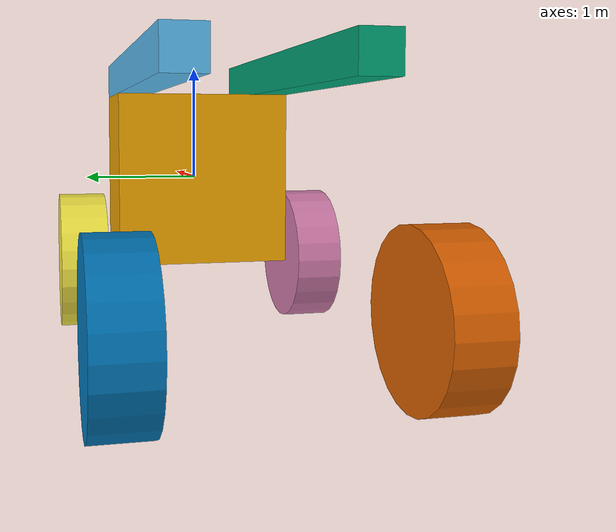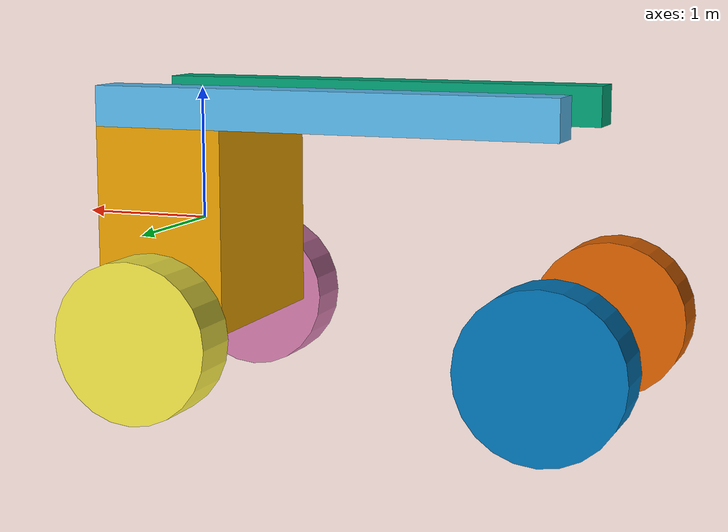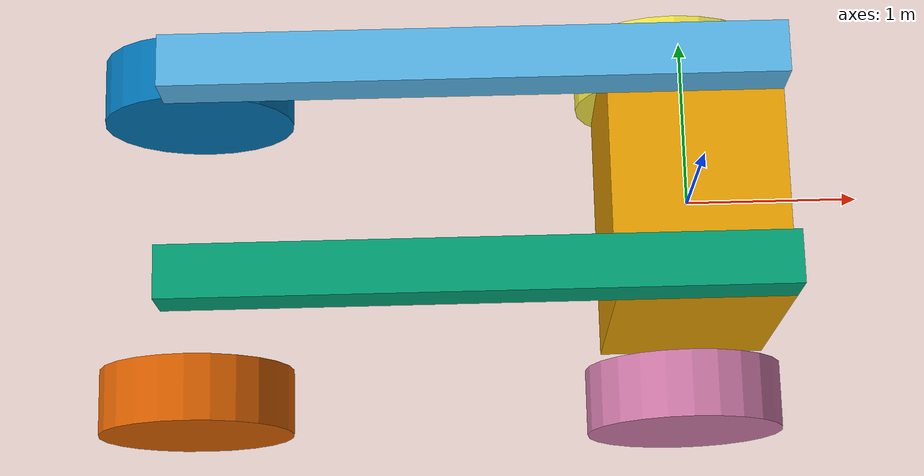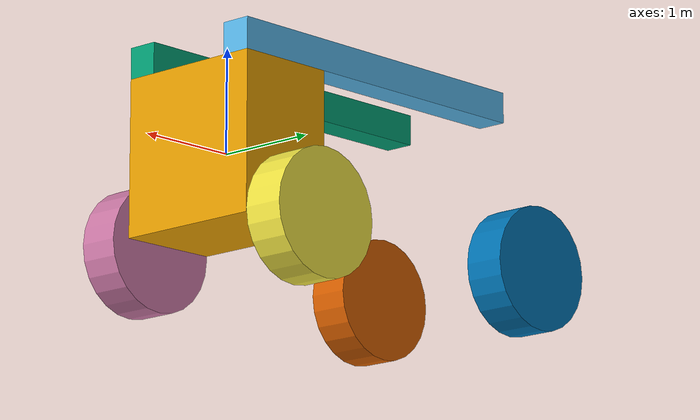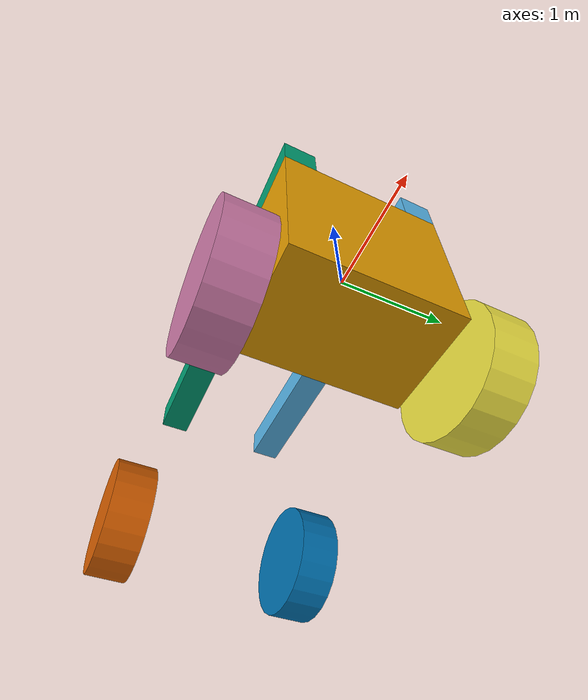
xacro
<?xml version="1.0"?>
<robot xmlns:xacro="http://www.ros.org/wiki/xacro" name="vehicle">
  <!-- Body properties -->
  <xacro:property name="body_mass" value="2000.0"/>
  <xacro:property name="body_length" value="1.0"/>
  <xacro:property name="body_width" value="1.5"/>
  <xacro:property name="body_height" value="1.5"/>

  <!-- Wheel properties -->
  <xacro:property name="wheel_mass" value="200"/>
  <xacro:property name="wheel_radius" value="0.6"/>
  <xacro:property name="wheel_width" value="0.4"/>
  <xacro:property name="wheel_f_clear" value="0.1"/>
  <xacro:property name="wheel_r_x" value="-4"/>

  <!-- Beam properties -->
  <xacro:property name="beam_mass" value="200.0"/>
  <xacro:property name="beam_length" value="3.5"/>
  <xacro:property name="beam_width" value="0.3"/>
  <xacro:property name="beam_height" value="0.3"/>

  <!-- Macros -->
  <xacro:macro name="inertia_box" params="mass lx ly lz">
    <inertia
      ixx="${1/12*mass*(ly**2 + lz**2)}"
      ixy="0"
      ixz="0"
      iyy="${1/12*mass*(lx**2 + lz**2)}"
      iyz="0"
      izz="${1/12*mass*(lx**2 + ly**2)}"
    />
  </xacro:macro>
  <xacro:macro name="inertia_cylinder" params="mass r l">
    <inertia
      ixx="${(1/12)*mass*(3*r**2 + l**2)}"
      ixy="0"
      ixz="0"
      iyy="${(1/12)*mass*(3*r**2 + l**2)}"
      iyz="0"
      izz="${(1/2)*mass*r**2}"
    />
  </xacro:macro>
  <xacro:macro name="material_tire">
    <material name="tire">
      <color rgba="0.2392 0.2157 0.1686 1"/>
    </material>
    <contact>
      <!-- ground plane has friction value of 1, so use
        friction value for tire-groundtype that is found online. -->
      <lateral_friction value="0.8"/>
    </contact>
  </xacro:macro>

  <link name="body">
    <inertial>
      <mass value="${body_mass}"/>
      <xacro:inertia_box mass="${body_mass}" lx="${body_length}" ly="${body_width}" lz="${body_height}"/>
    </inertial>
    <visual>
      <geometry>
        <box size="${body_length} ${body_width} ${body_height}"/>
      </geometry>
    </visual>
    <collision>
      <geometry>
        <box size="${body_length} ${body_width} ${body_height}"/>
      </geometry>
    </collision>
  </link>
  <link name="beam_left">
    <inertial>
      <mass value="${beam_mass}"/>
      <xacro:inertia_box mass="${beam_mass}" lx="${beam_length}" ly="${beam_width}" lz="${beam_height}"/>
    </inertial>
    <visual>
      <geometry>
        <box size="${beam_length} ${beam_width} ${beam_height}"/>
      </geometry>
    </visual>
    <collision>
      <geometry>
        <box size="${beam_length} ${beam_width} ${beam_height}"/>
      </geometry>
    </collision>
  </link>
  <link name="beam_right">
    <inertial>
      <mass value="${beam_mass}"/>
      <xacro:inertia_box mass="${beam_mass}" lx="${beam_length}" ly="${beam_width}" lz="${beam_height}"/>
    </inertial>
    <visual>
      <geometry>
        <box size="${beam_length} ${beam_width} ${beam_height}"/>
      </geometry>
    </visual>
    <collision>
      <geometry>
        <box size="${beam_length} ${beam_width} ${beam_height}"/>
      </geometry>
    </collision>
  </link>

  <link name="wheel_fl">
    <inertial>
      <mass value="${wheel_mass}"/>
      <xacro:inertia_cylinder mass="${wheel_mass}" r="${wheel_radius}" l="${wheel_width}"/>
    </inertial>
    <visual>
      <geometry>
        <cylinder radius="${wheel_radius}" length="${wheel_width}"/>
      </geometry>
      <origin xyz="0 0 0" rpy="-1.57 0 0"/>
    </visual>
    <collision>
      <geometry>
        <cylinder radius="${wheel_radius}" length="${wheel_width}"/>
      </geometry>
      <origin xyz="0 0 0" rpy="-1.57 0 0"/>
    </collision>
    <xacro:material_tire />
  </link>
  <link name="wheel_rl">
    <inertial>
      <mass value="${wheel_mass}"/>
      <xacro:inertia_cylinder mass="${wheel_mass}" r="${wheel_radius}" l="${wheel_width}"/>
    </inertial>
    <visual>
      <geometry>
        <cylinder radius="${wheel_radius}" length="${wheel_width}"/>
      </geometry>
      <origin xyz="0 0 0" rpy="-1.57 0 0"/>
    </visual>
    <collision>
      <geometry>
        <cylinder radius="${wheel_radius}" length="${wheel_width}"/>
      </geometry>
      <origin xyz="0 0 0" rpy="-1.57 0 0"/>
    </collision>
    <xacro:material_tire />
  </link>
  <link name="wheel_rr">
    <inertial>
      <mass value="${wheel_mass}"/>
      <xacro:inertia_cylinder mass="${wheel_mass}" r="${wheel_radius}" l="${wheel_width}"/>
    </inertial>
    <visual>
      <geometry>
        <cylinder radius="${wheel_radius}" length="${wheel_width}"/>
      </geometry>
      <origin xyz="0 0 0" rpy="1.57 0 0"/>
    </visual>
    <collision>
      <geometry>
        <cylinder radius="${wheel_radius}" length="${wheel_width}"/>
      </geometry>
      <origin xyz="0 0 0" rpy="1.57 0 0"/>
    </collision>
    <xacro:material_tire />
  </link>
  <link name="wheel_fr">
    <inertial>
      <mass value="${wheel_mass}"/>
      <xacro:inertia_cylinder mass="${wheel_mass}" r="${wheel_radius}" l="${wheel_width}"/>
    </inertial>
    <visual>
      <geometry>
        <cylinder radius="${wheel_radius}" length="${wheel_width}"/>
      </geometry>
      <origin xyz="0 0 0" rpy="1.57 0 0"/>
    </visual>
    <collision>
      <geometry>
        <cylinder radius="${wheel_radius}" length="${wheel_width}"/>
      </geometry>
      <origin xyz="0 0 0" rpy="1.57 0 0"/>
    </collision>
    <xacro:material_tire />
  </link>

  <!-- Beam joints -->
  <joint name="body_to_beam_left" type="fixed">
    <parent link="body"/>
    <child link="beam_left"/>
    <origin xyz="${body_length/2 - beam_length/2} ${body_width/2 - beam_width/2} ${body_height/2 + beam_height/2}"/>
  </joint>
  <joint name="body_to_beam_right" type="fixed">
    <parent link="body"/>
    <child link="beam_right"/>
    <origin xyz="${body_length/2 - beam_length/2} ${-body_width/2 + beam_width/2} ${body_height/2 + beam_height/2}"/>
  </joint>

  <joint name="body_to_wheel_fl" type="continuous">
    <parent link="body"/>
    <child link="wheel_fl"/>
    <origin xyz="0 ${body_width/2 + wheel_width/2 + wheel_f_clear} ${-body_height/2}"/>
    <axis xyz="0 1 0"/>
  </joint>
  <joint name="body_to_wheel_rl" type="continuous">
    <parent link="beam_left"/>
    <child link="wheel_rl"/>
    <origin xyz="${-beam_length/2} ${wheel_width} ${-body_height - beam_height/2}"/>
    <axis xyz="0 1 0"/>
  </joint>
  <joint name="body_to_wheel_rr" type="continuous">
    <parent link="beam_right"/>
    <child link="wheel_rr"/>
    <origin xyz="${-beam_length/2} ${-wheel_width} ${-body_height - beam_height/2}"/>
    <axis xyz="0 1 0"/>
  </joint>
  <joint name="body_to_wheel_fr" type="continuous">
    <parent link="body"/>
    <child link="wheel_fr"/>
    <origin xyz="0 ${-body_width/2 - wheel_width/2 - wheel_f_clear} ${-body_height/2}"/>
    <axis xyz="0 1 0"/>
  </joint>
</robot>
